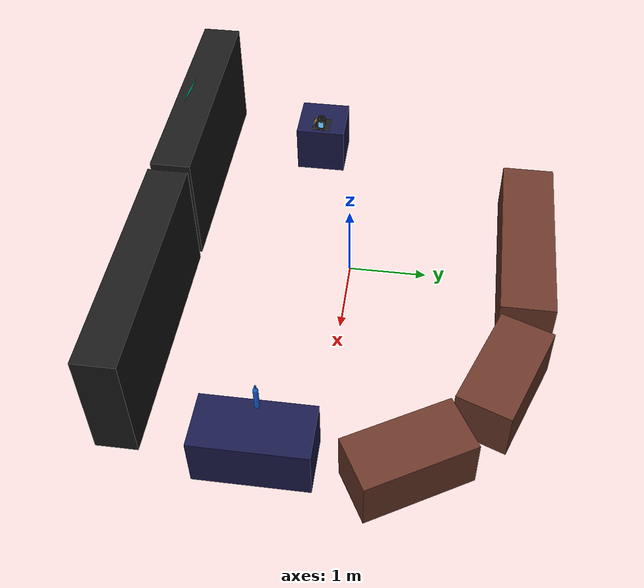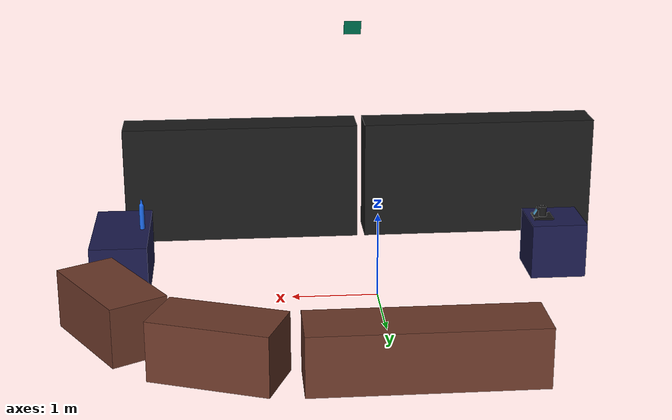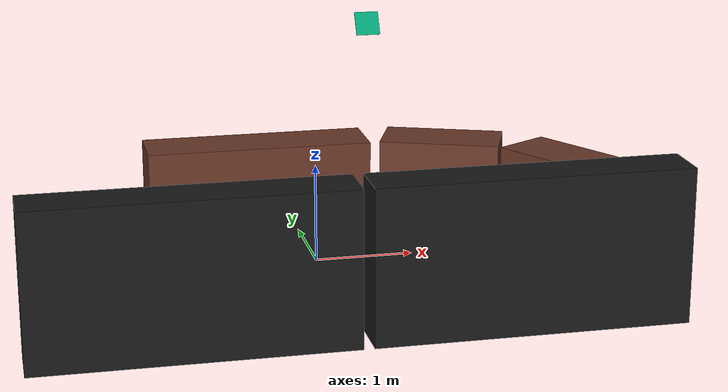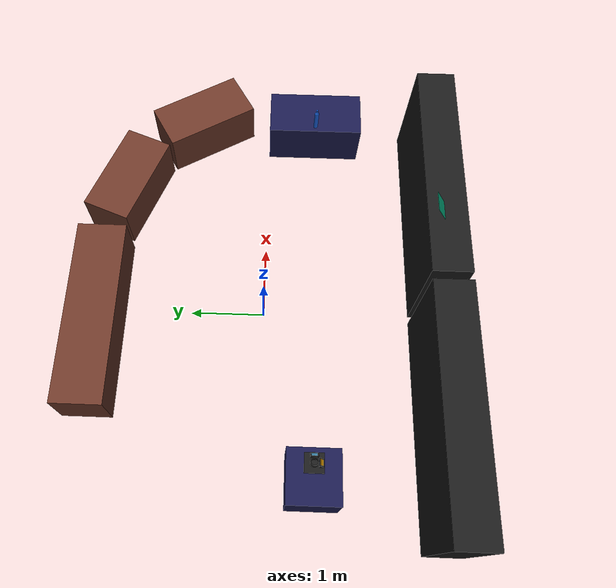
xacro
<?xml version="1.0"?>
<robot xmlns:xacro="http://wiki.ros.org/xacro" name="imetro_mobile_environment">

  <!-- Include macro -->
  <xacro:include filename="$(find phoebe_description)/urdf/imetro_mobile_environment/imetro_mobile_environment_macro.xacro"/>

  <link name="world"/>

  <xacro:imetro_mobile_environment parent="world">
    <origin xyz="0 0 0" rpy="0 0 0" />
  </xacro:imetro_mobile_environment>

</robot>

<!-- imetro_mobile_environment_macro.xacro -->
<robot xmlns:xacro="http://wiki.ros.org/xacro" name="imetro_mobile_environment">

  <xacro:macro name="imetro_mobile_environment" params="parent *origin">

  <link name="mobile_environment_base"/>

  <joint name="mobile_environment_base_joint" type="fixed">
    <parent link="${parent}"/>
    <child link="mobile_environment_base"/>
    <xacro:insert_block name="origin" />
  </joint>

    <!-- Include color xacro -->
    <xacro:include filename="$(find phoebe_description)/urdf/imetro_mobile_environment/imetro_mobile_environment_colors.xacro"/>

    <!-- ===================== BOOKSHELVES (CABINETS) ===================== -->
    <link name="bookshelves">

      <!-- right shelf -->
      <visual>
        <origin xyz="1.55 0 0.75"/>
        <geometry>
          <box size="3.0 0.5 1.5"/>
        </geometry>
        <material name="imetro_mobile_environment_black"/>
      </visual>
      <collision>
        <origin xyz="1.55 0 0.75"/>
        <geometry>
          <box size="3.0 0.5 1.5"/>
        </geometry>
      </collision>

      <!-- left shelf -->
      <visual>
        <origin xyz="-1.55 0 0.75"/>
        <geometry>
          <box size="3.0 0.5 1.5"/>
        </geometry>
        <material name="imetro_mobile_environment_black"/>
      </visual>
      <collision>
        <origin xyz="-1.55 0 0.75"/>
        <geometry>
          <box size="3.0 0.5 1.5"/>
        </geometry>
      </collision>

    </link>

    <joint name="bookshelves_joint" type="fixed">
      <parent link="mobile_environment_base"/>
      <child link="bookshelves"/>
      <origin xyz="0 -2.25 0"/>
    </joint>

    <!-- ===================== TABLES ===================== -->
    <!-- pick table -->
    <link name="pick_table">
      <visual>
        <origin xyz="0 0 0.333"/>
        <geometry>
          <box size="0.666 1.332 0.666"/>
        </geometry>
        <material name="imetro_mobile_environment_blue"/>
      </visual>
      <collision>
        <origin xyz="0 0 0.333"/>
        <geometry>
          <box size="0.666 1.332 0.666"/>
        </geometry>
      </collision>
    </link>

    <joint name="pick_table_joint" type="fixed">
      <parent link="mobile_environment_base"/>
      <child link="pick_table"/>
      <origin xyz="3.0 -0.666 0" rpy="0 0 0"/>
    </joint>

      <!-- place table -->
    <link name="place_table">
      <visual>
        <origin xyz="0 0 0.333"/>
        <geometry>
          <box size="0.666 0.666 0.666"/>
        </geometry>
        <material name="imetro_mobile_environment_blue"/>
      </visual>
      <collision>
        <origin xyz="0 0 0.333"/>
        <geometry>
          <box size="0.666 0.666 0.666"/>
        </geometry>
      </collision>
    </link>

    <joint name="place_table_joint" type="fixed">
      <parent link="mobile_environment_base"/>
      <child link="place_table"/>
      <origin xyz="-2.25 -0.666 0" rpy="0 0 0"/>
    </joint>

    <!-- ===================== DESKS ===================== -->
    <link name="desks">

      <!-- desk 1 -->
      <visual>
        <origin xyz="1.15 -1.0 0.333" rpy="0 0 0.523599"/>
        <geometry>
          <box size="0.666 1.332 0.666"/>
        </geometry>
        <material name="imetro_mobile_environment_brown"/>
      </visual>
      <collision>
        <origin xyz="1.15 -1.0 0.333" rpy="0 0 0.523599"/>
        <geometry>
          <box size="0.666 1.332 0.666"/>
        </geometry>
      </collision>

      <!-- desk 2 -->
      <visual>
        <origin xyz="0 0 0.333" rpy="0 0 1.2"/>
        <geometry>
          <box size="0.666 1.332 0.666"/>
        </geometry>
        <material name="imetro_mobile_environment_brown"/>
      </visual>
      <collision>
        <origin xyz="0 0 0.333" rpy="0 0 1.2"/>
        <geometry>
          <box size="0.666 1.332 0.666"/>
        </geometry>
      </collision>

      <!-- desk 3 -->
      <visual>
        <origin xyz="-2.1 0.25 0.333" rpy="0 0 1.57"/>
        <geometry>
          <box size="0.666 2.5 0.666"/>
        </geometry>
        <material name="imetro_mobile_environment_brown"/>
      </visual>
      <collision>
        <origin xyz="-2.1 0.25 0.333" rpy="0 0 1.57"/>
        <geometry>
          <box size="0.666 2.5 0.666"/>
        </geometry>
      </collision>

    </link>

    <joint name="desks_joint" type="fixed">
     <parent link="mobile_environment_base"/>
      <child link="desks"/>
      <origin xyz="1.85 2.0 0" rpy="0 0 0"/>
    </joint>

    <!-- ===================== CYLINDER ===================== -->
    <link name="cylinder">
      <!-- Placeholder mass params for the 3d printed cylinder, likely needs updates -->
      <inertial>
          <mass value="0.5" />
          <origin xyz="0 0 0.182975" rpy="0 0 0" />
          <inertia ixx="0.005691726" ixy="0.0" ixz="0.0" iyy="0.005691726" iyz="0.0" izz="0.000223503" />
      </inertial>
       <visual>
          <origin xyz="0 0 0"/>
          <geometry>
              <mesh filename="package://phoebe_description/meshes/visual/cylinder/cylinder_mockup_full_length_m.stl"/>
          </geometry>
          <material name="cylinder_bottle_blue"/>
       </visual>
       <collision>
          <origin xyz="0 0 0"/>
          <geometry>
              <mesh filename="package://phoebe_description/meshes/visual/cylinder/cylinder_mockup_full_length_m.stl"/>
          </geometry>
       </collision>
    </link>

    <joint name="cylinder_joint" type="floating">
      <parent link="mobile_environment_base"/>
      <child link="cylinder"/>
      <origin xyz="2.75 -0.666 0.665" rpy="0 0 0"/>
    </joint>

    <!-- ===================== CYLINDER JIG + APRIL TAGS ===================== -->
    <link name="cylinder_jig">
      <visual>
        <origin xyz="0 0 0" rpy="0 0 0"/>
        <geometry>
          <mesh filename="package://phoebe_description/meshes/visual/cylinder/cylinder_jig/cylinder_jig_m.stl"/>
        </geometry>
        <material name="imetro_mobile_environment_black"/>
      </visual>
      <collision>
        <origin xyz="0 0 0" rpy="0 0 0"/>
        <geometry>
          <mesh filename="package://phoebe_description/meshes/visual/cylinder/cylinder_jig/cylinder_jig_m.stl"/>
        </geometry>
      </collision>
    </link>

    <joint name="cylinder_jig_joint" type="fixed">
      <parent link="mobile_environment_base"/>
      <child link="cylinder_jig"/>
      <origin xyz="-2.1 -0.666 0.667" rpy="3.14 3.14 -1.57"/>
    </joint>

  <link name="apriltag_0">
    <visual>
      <geometry>
        <mesh filename="package://phoebe_description/meshes/visual/april_tags/AprilTag_0000.dae"/>
      </geometry>
      <material name="tag36h11-0">
        <texture filename="package://phoebe_description/meshes/visual/april_tags/tag36_11_00000.png"/>
     </material>
    </visual>
 </link>

   <joint name="apriltag_0_joint" type="fixed">
     <parent link="cylinder_jig"/>
     <child link="apriltag_0"/>
     <origin xyz="-0.089 0 0.066" rpy="0 0.52360 0"/>
   </joint>

  <link name="apriltag_4">
    <visual>
      <geometry>
        <mesh filename="package://phoebe_description/meshes/visual/april_tags/AprilTag_0004.dae"/>
      </geometry>
      <material name="tag36h11-4">
        <texture filename="package://phoebe_description/meshes/visual/april_tags/tag36_11_00004.png"/>
      </material>
    </visual>
 </link>

   <joint name="apriltag_4_joint" type="fixed">
     <parent link="cylinder_jig"/>
     <child link="apriltag_4"/>
     <origin xyz="0 -0.089 0.066" rpy="0 0.52360 1.57"/>
   </joint>

   <!-- ===================== WORLD APRIL TAG ===================== -->

  <link name="apriltag_1">
    <visual>
      <geometry>
        <mesh filename="package://phoebe_description/meshes/visual/april_tags/AprilTag_0001.dae"/>
      </geometry>
      <material name="tag36h11-1">
        <texture filename="package://phoebe_description/meshes/visual/april_tags/tag36_11_00001.png"/>
      </material>
    </visual>
  </link>

   <joint name="apriltag_1_joint" type="fixed">
    <parent link="mobile_environment_base"/>
    <child link="apriltag_1"/>
    <origin xyz="0.134059 -1.788736 2.822666" rpy="-3.14159 0.52360 1.57"/>
   </joint>

  </xacro:macro>

</robot>

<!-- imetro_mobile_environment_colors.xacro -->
<robot xmlns:xacro="http://wiki.ros.org/xacro" name="phoebe_colors">

  <!-- ===================== MATERIALS/COLORS ===================== -->
  <material name="imetro_mobile_environment_black">
    <color rgba="0.1 0.1 0.1 1"/>
  </material>

  <material name="imetro_mobile_environment_blue">
    <color rgba="0.1 0.1 0.3 1"/>
  </material>

  <material name="imetro_mobile_environment_brown">
    <color rgba="0.42 0.22 0.16 1"/>
  </material>

  <material name="imetro_mobile_environment_gray">
    <color rgba="0.7 0.7 0.7 1"/>
  </material>

  <material name="cylinder_bottle_blue">
    <color rgba="0.1 0.4 0.9 1"/>
  </material>

</robot>
